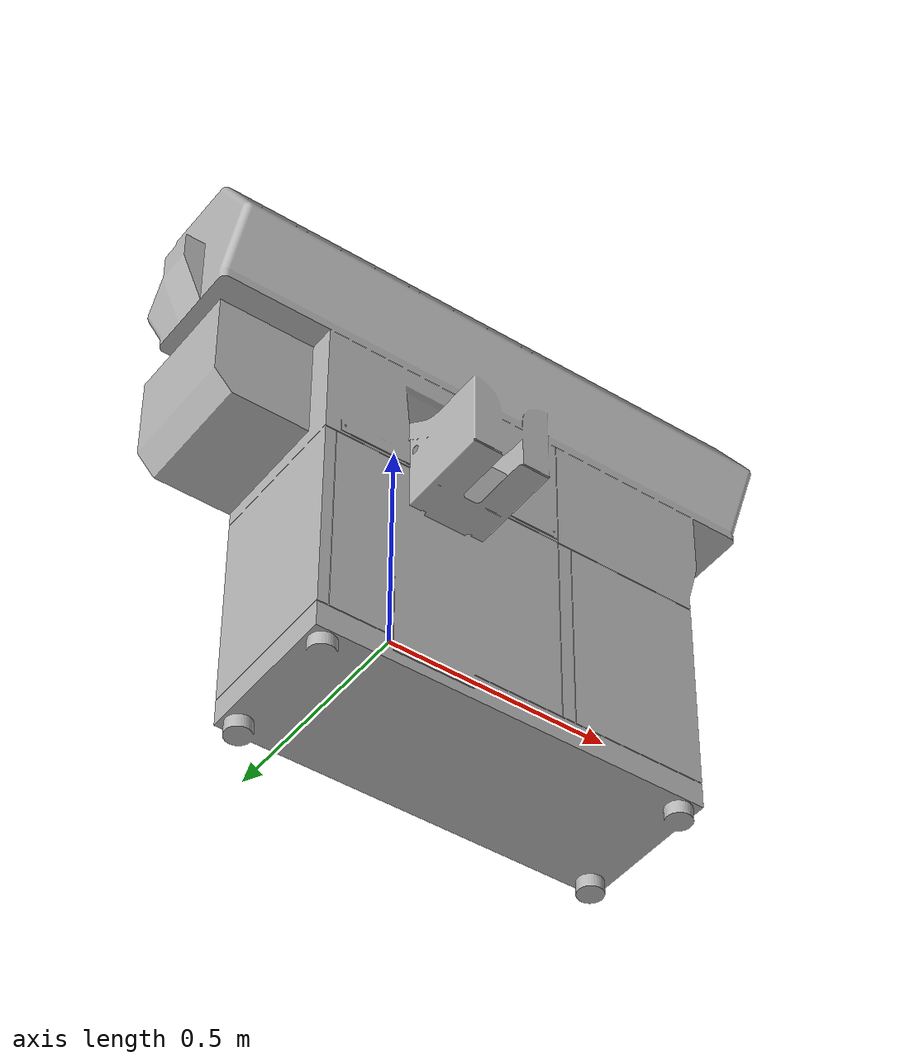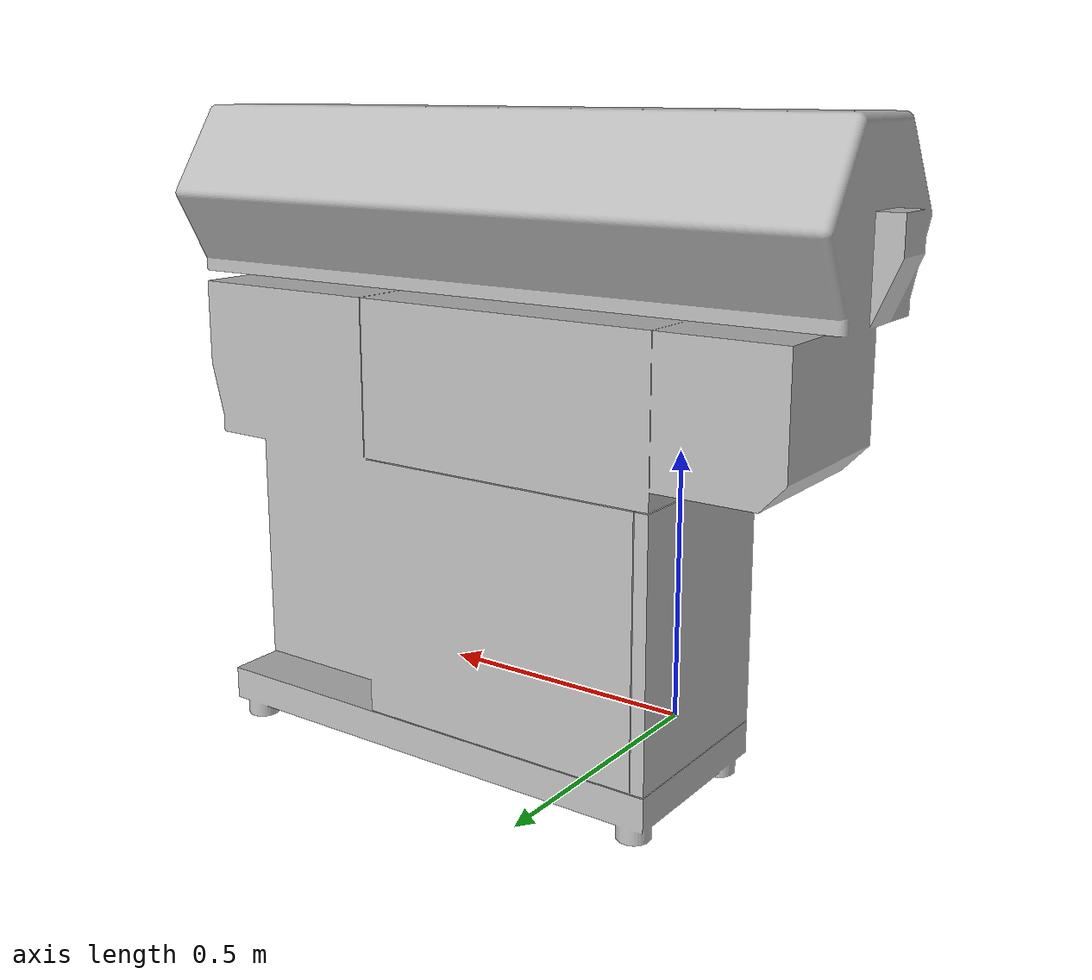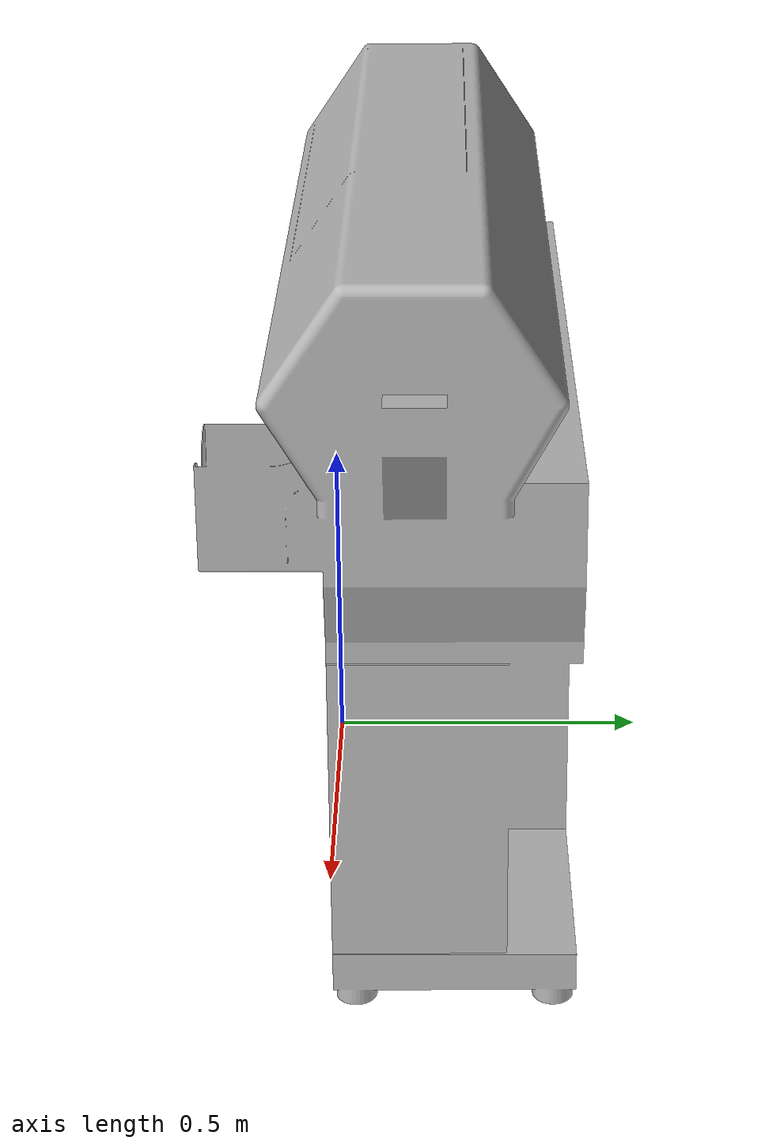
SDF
<?xml version="1.0" ?>
<sdf version="1.6">
  <model name="trico2">
  	<link name="link">
  		<pose> 0 0 0 0 0 3.14</pose>
  		<self_collide>0</self_collide>
        	<inertial>
          		<pose>0 0 0 0 -0 0</pose>
          		<inertia>
            			<ixx>746007</ixx>
            			<ixy>0</ixy>
            			<ixz>0</ixz>
            			<iyy>1058</iyy>
            			<iyz>0</iyz>
            			<izz>746556</izz>
          		</inertia>
          		<mass>100000</mass>
        	</inertial>
        	<enable_wind>0</enable_wind>
        	<kinematic>0</kinematic>
  		<visual name="visual">
        		<geometry>
          			<mesh>
            				<uri>model://trico2/meshes/trico.dae</uri>
            				<scale> 1 1 1</scale>
          			</mesh>
        		</geometry>
      		</visual>
      		<collision name="collision">
        		<geometry>
          			<mesh>
            				<uri>model://trico2/meshes/trico.dae</uri>
            				<scale>  1 1 1</scale>
          			</mesh>
        		</geometry>
      		</collision>
    	</link>
  </model>
</sdf>
